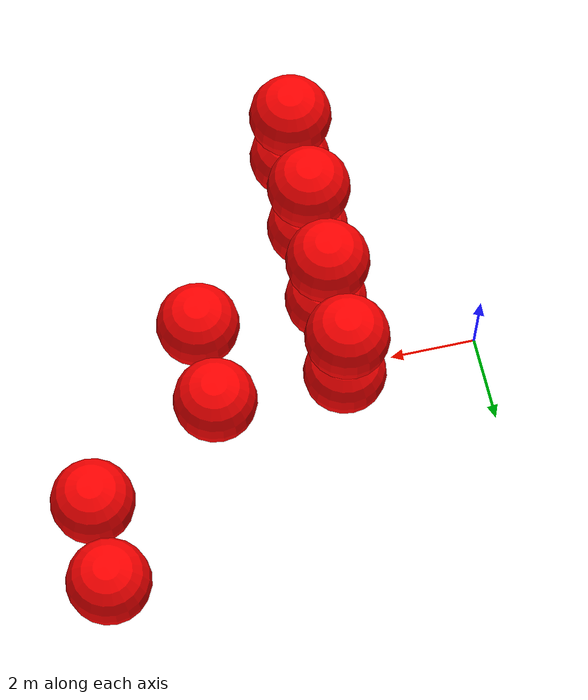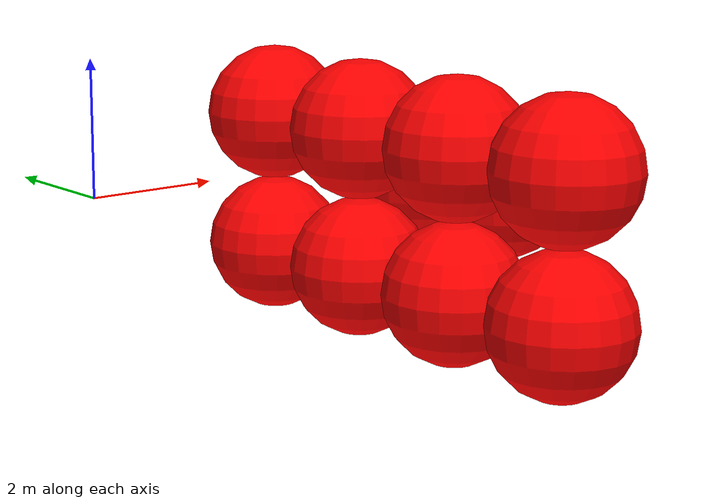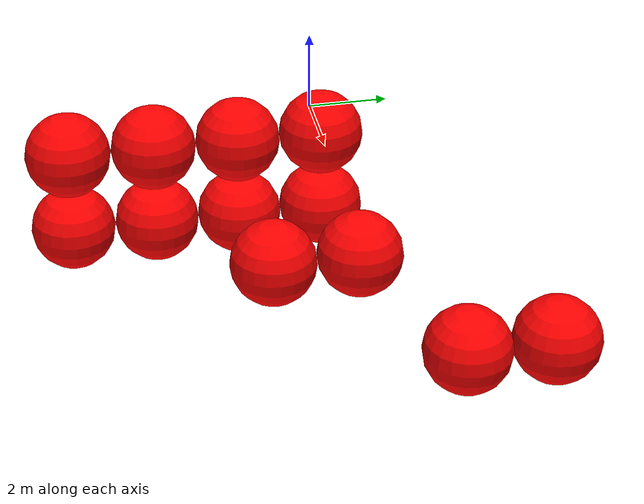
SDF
<sdf version="1.8">
 <world name="3d_world">
  <model name="obstacle_1" canonical_link="obstacle">
   <static>true</static>
   <pose relative_to="world">3.01 -6.30 -1.00 0 0 0</pose>
   <link name="obstacle">
    <pose relative_to="__model__">0.0 0 0.0 0 0 0</pose>
    <visual name="visual">
     <geometry><sphere><radius>1.00</radius></sphere></geometry>
     <material>
      <ambient>1.0 0.0 0.0 1</ambient>
      <diffuse>1.0 0.0 0.0 1</diffuse>
      <specular>1.0 0.0 0.0 1</specular>
     </material>
    </visual>
    <collision name="collision"><geometry><sphere><radius>1.00</radius></sphere></geometry></collision>
    <enable_gravity>false</enable_gravity>
   </link>
   <plugin filename="ignition-gazebo-velocity-control-system" name="ignition::gazebo::systems::VelocityControl">
    <initial_linear>0.00 0.00 0.00</initial_linear>
    <initial_angular>0 0 0</initial_angular>
   </plugin>
   <plugin filename="ignition-gazebo-odometry-publisher-system" name="ignition::gazebo::systems::OdometryPublisher">
    <dimensions>3</dimensions>
   </plugin>
  </model>
  <model name="obstacle_2" canonical_link="obstacle">
   <static>true</static>
   <pose relative_to="world">3.01 -4.30 -1.00 0 0 0</pose>
   <link name="obstacle">
    <pose relative_to="__model__">0.0 0 0.0 0 0 0</pose>
    <visual name="visual">
     <geometry><sphere><radius>1.00</radius></sphere></geometry>
     <material>
      <ambient>1.0 0.0 0.0 1</ambient>
      <diffuse>1.0 0.0 0.0 1</diffuse>
      <specular>1.0 0.0 0.0 1</specular>
     </material>
    </visual>
    <collision name="collision"><geometry><sphere><radius>1.00</radius></sphere></geometry></collision>
    <enable_gravity>false</enable_gravity>
   </link>
   <plugin filename="ignition-gazebo-velocity-control-system" name="ignition::gazebo::systems::VelocityControl">
    <initial_linear>0.00 0.00 0.00</initial_linear>
    <initial_angular>0 0 0</initial_angular>
   </plugin>
   <plugin filename="ignition-gazebo-odometry-publisher-system" name="ignition::gazebo::systems::OdometryPublisher">
    <dimensions>3</dimensions>
   </plugin>
  </model>
  <model name="obstacle_3" canonical_link="obstacle">
   <static>true</static>
   <pose relative_to="world">3.01 -2.30 -1.00 0 0 0</pose>
   <link name="obstacle">
    <pose relative_to="__model__">0.0 0 0.0 0 0 0</pose>
    <visual name="visual">
     <geometry><sphere><radius>1.00</radius></sphere></geometry>
     <material>
      <ambient>1.0 0.0 0.0 1</ambient>
      <diffuse>1.0 0.0 0.0 1</diffuse>
      <specular>1.0 0.0 0.0 1</specular>
     </material>
    </visual>
    <collision name="collision"><geometry><sphere><radius>1.00</radius></sphere></geometry></collision>
    <enable_gravity>false</enable_gravity>
   </link>
   <plugin filename="ignition-gazebo-velocity-control-system" name="ignition::gazebo::systems::VelocityControl">
    <initial_linear>0.00 0.00 0.00</initial_linear>
    <initial_angular>0 0 0</initial_angular>
   </plugin>
   <plugin filename="ignition-gazebo-odometry-publisher-system" name="ignition::gazebo::systems::OdometryPublisher">
    <dimensions>3</dimensions>
   </plugin>
  </model>
  <model name="obstacle_4" canonical_link="obstacle">
   <static>true</static>
   <pose relative_to="world">3.01 -0.30 -1.00 0 0 0</pose>
   <link name="obstacle">
    <pose relative_to="__model__">0.0 0 0.0 0 0 0</pose>
    <visual name="visual">
     <geometry><sphere><radius>1.00</radius></sphere></geometry>
     <material>
      <ambient>1.0 0.0 0.0 1</ambient>
      <diffuse>1.0 0.0 0.0 1</diffuse>
      <specular>1.0 0.0 0.0 1</specular>
     </material>
    </visual>
    <collision name="collision"><geometry><sphere><radius>1.00</radius></sphere></geometry></collision>
    <enable_gravity>false</enable_gravity>
   </link>
   <plugin filename="ignition-gazebo-velocity-control-system" name="ignition::gazebo::systems::VelocityControl">
    <initial_linear>0.00 0.00 0.00</initial_linear>
    <initial_angular>0 0 0</initial_angular>
   </plugin>
   <plugin filename="ignition-gazebo-odometry-publisher-system" name="ignition::gazebo::systems::OdometryPublisher">
    <dimensions>3</dimensions>
   </plugin>
  </model>
  <model name="obstacle_5" canonical_link="obstacle">
   <static>true</static>
   <pose relative_to="world">3.01 -6.30 1.00 0 0 0</pose>
   <link name="obstacle">
    <pose relative_to="__model__">0.0 0 0.0 0 0 0</pose>
    <visual name="visual">
     <geometry><sphere><radius>1.00</radius></sphere></geometry>
     <material>
      <ambient>1.0 0.0 0.0 1</ambient>
      <diffuse>1.0 0.0 0.0 1</diffuse>
      <specular>1.0 0.0 0.0 1</specular>
     </material>
    </visual>
    <collision name="collision"><geometry><sphere><radius>1.00</radius></sphere></geometry></collision>
    <enable_gravity>false</enable_gravity>
   </link>
   <plugin filename="ignition-gazebo-velocity-control-system" name="ignition::gazebo::systems::VelocityControl">
    <initial_linear>0.00 0.00 0.00</initial_linear>
    <initial_angular>0 0 0</initial_angular>
   </plugin>
   <plugin filename="ignition-gazebo-odometry-publisher-system" name="ignition::gazebo::systems::OdometryPublisher">
    <dimensions>3</dimensions>
   </plugin>
  </model>
  <model name="obstacle_6" canonical_link="obstacle">
   <static>true</static>
   <pose relative_to="world">3.01 -4.30 1.00 0 0 0</pose>
   <link name="obstacle">
    <pose relative_to="__model__">0.0 0 0.0 0 0 0</pose>
    <visual name="visual">
     <geometry><sphere><radius>1.00</radius></sphere></geometry>
     <material>
      <ambient>1.0 0.0 0.0 1</ambient>
      <diffuse>1.0 0.0 0.0 1</diffuse>
      <specular>1.0 0.0 0.0 1</specular>
     </material>
    </visual>
    <collision name="collision"><geometry><sphere><radius>1.00</radius></sphere></geometry></collision>
    <enable_gravity>false</enable_gravity>
   </link>
   <plugin filename="ignition-gazebo-velocity-control-system" name="ignition::gazebo::systems::VelocityControl">
    <initial_linear>0.00 0.00 0.00</initial_linear>
    <initial_angular>0 0 0</initial_angular>
   </plugin>
   <plugin filename="ignition-gazebo-odometry-publisher-system" name="ignition::gazebo::systems::OdometryPublisher">
    <dimensions>3</dimensions>
   </plugin>
  </model>
  <model name="obstacle_7" canonical_link="obstacle">
   <static>true</static>
   <pose relative_to="world">3.01 -2.30 1.00 0 0 0</pose>
   <link name="obstacle">
    <pose relative_to="__model__">0.0 0 0.0 0 0 0</pose>
    <visual name="visual">
     <geometry><sphere><radius>1.00</radius></sphere></geometry>
     <material>
      <ambient>1.0 0.0 0.0 1</ambient>
      <diffuse>1.0 0.0 0.0 1</diffuse>
      <specular>1.0 0.0 0.0 1</specular>
     </material>
    </visual>
    <collision name="collision"><geometry><sphere><radius>1.00</radius></sphere></geometry></collision>
    <enable_gravity>false</enable_gravity>
   </link>
   <plugin filename="ignition-gazebo-velocity-control-system" name="ignition::gazebo::systems::VelocityControl">
    <initial_linear>0.00 0.00 0.00</initial_linear>
    <initial_angular>0 0 0</initial_angular>
   </plugin>
   <plugin filename="ignition-gazebo-odometry-publisher-system" name="ignition::gazebo::systems::OdometryPublisher">
    <dimensions>3</dimensions>
   </plugin>
  </model>
  <model name="obstacle_8" canonical_link="obstacle">
   <static>true</static>
   <pose relative_to="world">3.01 -0.30 1.00 0 0 0</pose>
   <link name="obstacle">
    <pose relative_to="__model__">0.0 0 0.0 0 0 0</pose>
    <visual name="visual">
     <geometry><sphere><radius>1.00</radius></sphere></geometry>
     <material>
      <ambient>1.0 0.0 0.0 1</ambient>
      <diffuse>1.0 0.0 0.0 1</diffuse>
      <specular>1.0 0.0 0.0 1</specular>
     </material>
    </visual>
    <collision name="collision"><geometry><sphere><radius>1.00</radius></sphere></geometry></collision>
    <enable_gravity>false</enable_gravity>
   </link>
   <plugin filename="ignition-gazebo-velocity-control-system" name="ignition::gazebo::systems::VelocityControl">
    <initial_linear>0.00 0.00 0.00</initial_linear>
    <initial_angular>0 0 0</initial_angular>
   </plugin>
   <plugin filename="ignition-gazebo-odometry-publisher-system" name="ignition::gazebo::systems::OdometryPublisher">
    <dimensions>3</dimensions>
   </plugin>
  </model>
  <model name="obstacle_19" canonical_link="obstacle">
   <static>false</static>
   <pose relative_to="world">6.21 -2.00 -0.41 0 0 0</pose>
   <link name="obstacle">
    <pose relative_to="__model__">0.0 0 0.0 0 0 0</pose>
    <visual name="visual">
     <geometry><sphere><radius>1.00</radius></sphere></geometry>
     <material>
      <ambient>1.0 0.0 0.0 1</ambient>
      <diffuse>1.0 0.0 0.0 1</diffuse>
      <specular>1.0 0.0 0.0 1</specular>
     </material>
    </visual>
    <collision name="collision"><geometry><sphere><radius>1.00</radius></sphere></geometry></collision>
    <enable_gravity>false</enable_gravity>
   </link>
   <plugin filename="ignition-gazebo-velocity-control-system" name="ignition::gazebo::systems::VelocityControl">
    <initial_linear>0.00 1.77 0.59</initial_linear>
    <initial_angular>0 0 0</initial_angular>
   </plugin>
   <plugin filename="ignition-gazebo-odometry-publisher-system" name="ignition::gazebo::systems::OdometryPublisher">
    <dimensions>3</dimensions>
   </plugin>
  </model>
  <model name="obstacle_20" canonical_link="obstacle">
   <static>false</static>
   <pose relative_to="world">6.21 0.00 -0.41 0 0 0</pose>
   <link name="obstacle">
    <pose relative_to="__model__">0.0 0 0.0 0 0 0</pose>
    <visual name="visual">
     <geometry><sphere><radius>1.00</radius></sphere></geometry>
     <material>
      <ambient>1.0 0.0 0.0 1</ambient>
      <diffuse>1.0 0.0 0.0 1</diffuse>
      <specular>1.0 0.0 0.0 1</specular>
     </material>
    </visual>
    <collision name="collision"><geometry><sphere><radius>1.00</radius></sphere></geometry></collision>
    <enable_gravity>false</enable_gravity>
   </link>
   <plugin filename="ignition-gazebo-velocity-control-system" name="ignition::gazebo::systems::VelocityControl">
    <initial_linear>0.00 1.77 0.59</initial_linear>
    <initial_angular>0 0 0</initial_angular>
   </plugin>
   <plugin filename="ignition-gazebo-odometry-publisher-system" name="ignition::gazebo::systems::OdometryPublisher">
    <dimensions>3</dimensions>
   </plugin>
  </model>
  <model name="obstacle_21" canonical_link="obstacle">
   <static>false</static>
   <pose relative_to="world">9.47 1.67 -0.93 0 0 0</pose>
   <link name="obstacle">
    <pose relative_to="__model__">0.0 0 0.0 0 0 0</pose>
    <visual name="visual">
     <geometry><sphere><radius>1.00</radius></sphere></geometry>
     <material>
      <ambient>1.0 0.0 0.0 1</ambient>
      <diffuse>1.0 0.0 0.0 1</diffuse>
      <specular>1.0 0.0 0.0 1</specular>
     </material>
    </visual>
    <collision name="collision"><geometry><sphere><radius>1.00</radius></sphere></geometry></collision>
    <enable_gravity>false</enable_gravity>
   </link>
   <plugin filename="ignition-gazebo-velocity-control-system" name="ignition::gazebo::systems::VelocityControl">
    <initial_linear>0.00 -0.91 0.35</initial_linear>
    <initial_angular>0 0 0</initial_angular>
   </plugin>
   <plugin filename="ignition-gazebo-odometry-publisher-system" name="ignition::gazebo::systems::OdometryPublisher">
    <dimensions>3</dimensions>
   </plugin>
  </model>
  <model name="obstacle_22" canonical_link="obstacle">
   <static>false</static>
   <pose relative_to="world">9.47 3.67 -0.93 0 0 0</pose>
   <link name="obstacle">
    <pose relative_to="__model__">0.0 0 0.0 0 0 0</pose>
    <visual name="visual">
     <geometry><sphere><radius>1.00</radius></sphere></geometry>
     <material>
      <ambient>1.0 0.0 0.0 1</ambient>
      <diffuse>1.0 0.0 0.0 1</diffuse>
      <specular>1.0 0.0 0.0 1</specular>
     </material>
    </visual>
    <collision name="collision"><geometry><sphere><radius>1.00</radius></sphere></geometry></collision>
    <enable_gravity>false</enable_gravity>
   </link>
   <plugin filename="ignition-gazebo-velocity-control-system" name="ignition::gazebo::systems::VelocityControl">
    <initial_linear>0.00 -0.91 0.35</initial_linear>
    <initial_angular>0 0 0</initial_angular>
   </plugin>
   <plugin filename="ignition-gazebo-odometry-publisher-system" name="ignition::gazebo::systems::OdometryPublisher">
    <dimensions>3</dimensions>
   </plugin>
  </model>
 </world>
</sdf>
